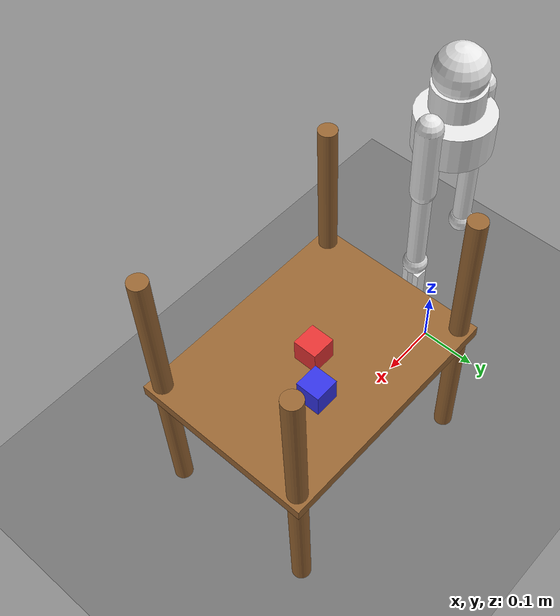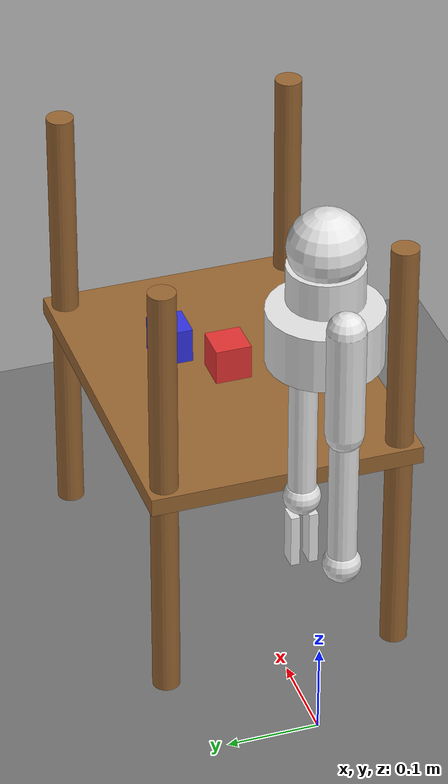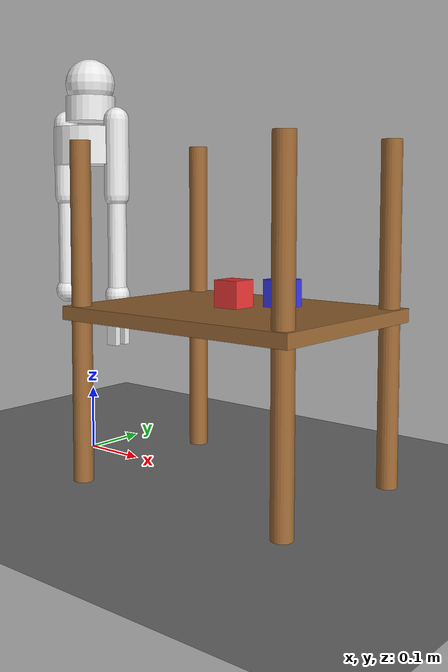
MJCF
<mujoco model="reachy_mini_manipulation">
  <compiler angle="radian" autolimits="true"/>
  <option timestep="0.002" gravity="0 0 -9.81"/>

  <visual>
    <global offwidth="960" offheight="540"/>
  </visual>

  <default>
    <joint armature="0.01" damping="0.5"/>
    <geom condim="4" friction="1.0 0.005 0.0001"/>
    <position kp="200" kv="10"/>
  </default>

  <asset>
    <texture name="grid" type="2d" builtin="checker" rgb1="0.4 0.4 0.4" rgb2="0.5 0.5 0.5" width="512" height="512"/>
    <material name="grid_mat" texture="grid" texrepeat="5 5" reflectance="0.1"/>
    <material name="robot_mat" rgba="0.9 0.9 0.9 1"/>
    <material name="red_obj" rgba="0.9 0.2 0.2 1"/>
    <material name="blue_obj" rgba="0.2 0.2 0.9 1"/>
    <material name="table_mat" rgba="0.6 0.4 0.2 1"/>
  </asset>

  <worldbody>
    <geom name="ground" type="plane" size="5 5 0.1" material="grid_mat"/>
    <light name="top" pos="0 0 3" dir="0 0 -1"/>
    <light name="side" pos="2 2 2" dir="-1 -1 -1"/>

    <!-- Reachy Mini base (table-mounted arm) -->
    <body name="base" pos="0 0 0.5">
      <inertial mass="2.0" pos="0 0 0" diaginertia="0.05 0.05 0.05"/>
      <geom name="base_geom" type="cylinder" size="0.06 0.03" material="robot_mat"/>

      <!-- Head (pan/tilt) -->
      <body name="head_base" pos="0 0 0.06">
        <inertial mass="0.5" pos="0 0 0.03" diaginertia="0.005 0.005 0.005"/>
        <joint name="head_pan" type="hinge" axis="0 0 1" range="-1.5 1.5"/>
        <geom name="head_base_geom" type="cylinder" size="0.04 0.02" material="robot_mat"/>

        <body name="head_tilt" pos="0 0 0.04">
          <inertial mass="0.3" pos="0 0.02 0" diaginertia="0.002 0.002 0.002"/>
          <joint name="head_tilt" type="hinge" axis="1 0 0" range="-0.5 0.5"/>
          <geom name="head_geom" type="sphere" size="0.04" material="robot_mat"/>
        </body>
      </body>

      <!-- Right arm (main arm for manipulation) -->
      <body name="r_shoulder" pos="0.06 0 0.04">
        <inertial mass="0.3" pos="0 0 -0.06" diaginertia="0.003 0.003 0.003"/>
        <joint name="r_shoulder_pitch" type="hinge" axis="1 0 0" range="-2 2"/>
        <geom name="r_upper_arm" type="capsule" size="0.02" fromto="0 0 0 0 0 -0.12" material="robot_mat"/>

        <body name="r_elbow" pos="0 0 -0.12">
          <inertial mass="0.2" pos="0 0 -0.08" diaginertia="0.002 0.002 0.002"/>
          <joint name="r_elbow" type="hinge" axis="1 0 0" range="-2.5 0"/>
          <geom name="r_forearm" type="capsule" size="0.015" fromto="0 0 0 0 0 -0.16" material="robot_mat"/>

          <body name="r_wrist" pos="0 0 -0.16">
            <inertial mass="0.1" pos="0 0 0" diaginertia="0.001 0.001 0.001"/>
            <joint name="r_wrist" type="hinge" axis="0 1 0" range="-1 1"/>
            <geom name="r_wrist_geom" type="sphere" size="0.02" material="robot_mat"/>

            <!-- Gripper -->
            <body name="r_gripper_base" pos="0 0 -0.02">
              <inertial mass="0.05" pos="0 0 0" diaginertia="0.0005 0.0005 0.0005"/>
              <joint name="gripper" type="hinge" axis="0 1 0" range="-0.5 0.5"/>
              <geom name="r_gripper_l" type="box" size="0.01 0.005 0.03" pos="0 0.01 -0.03" material="robot_mat"/>
              <geom name="r_gripper_r" type="box" size="0.01 0.005 0.03" pos="0 -0.01 -0.03" material="robot_mat"/>
            </body>
          </body>
        </body>
      </body>

      <!-- Left arm (secondary) -->
      <body name="l_shoulder" pos="-0.06 0 0.04">
        <inertial mass="0.3" pos="0 0 -0.06" diaginertia="0.003 0.003 0.003"/>
        <joint name="l_shoulder_pitch" type="hinge" axis="1 0 0" range="-2 2"/>
        <geom name="l_upper_arm" type="capsule" size="0.02" fromto="0 0 0 0 0 -0.12" material="robot_mat"/>

        <body name="l_elbow" pos="0 0 -0.12">
          <inertial mass="0.2" pos="0 0 -0.08" diaginertia="0.002 0.002 0.002"/>
          <joint name="l_elbow" type="hinge" axis="1 0 0" range="-2.5 0"/>
          <geom name="l_forearm" type="capsule" size="0.015" fromto="0 0 0 0 0 -0.16" material="robot_mat"/>

          <body name="l_wrist" pos="0 0 -0.16">
            <inertial mass="0.1" pos="0 0 0" diaginertia="0.001 0.001 0.001"/>
            <joint name="l_wrist" type="hinge" axis="0 1 0" range="-1 1"/>
            <geom name="l_hand" type="sphere" size="0.02" material="robot_mat"/>
          </body>
        </body>
      </body>
    </body>

    <!-- Table -->
    <body name="table" pos="0.3 0 0.25">
      <geom name="table_top" type="box" size="0.2 0.15 0.01" material="table_mat"/>
      <geom name="table_leg1" type="cylinder" size="0.015 0.25" pos="0.18 0.13 0" material="table_mat"/>
      <geom name="table_leg2" type="cylinder" size="0.015 0.25" pos="-0.18 0.13 0" material="table_mat"/>
      <geom name="table_leg3" type="cylinder" size="0.015 0.25" pos="0.18 -0.13 0" material="table_mat"/>
      <geom name="table_leg4" type="cylinder" size="0.015 0.25" pos="-0.18 -0.13 0" material="table_mat"/>
    </body>

    <!-- Manipulation objects -->
    <body name="red_cube" pos="0.3 0 0.28">
      <freejoint name="red_cube_joint"/>
      <inertial mass="0.05" pos="0 0 0" diaginertia="0.0001 0.0001 0.0001"/>
      <geom name="red_cube_geom" type="box" size="0.02 0.02 0.02" material="red_obj"/>
    </body>

    <body name="blue_cube" pos="0.35 0.05 0.28">
      <freejoint name="blue_cube_joint"/>
      <inertial mass="0.05" pos="0 0 0" diaginertia="0.0001 0.0001 0.0001"/>
      <geom name="blue_cube_geom" type="box" size="0.02 0.02 0.02" material="blue_obj"/>
    </body>
  </worldbody>

  <!-- Actuators -->
  <actuator>
    <position name="head_pan_ctrl" joint="head_pan" kp="100"/>
    <position name="head_tilt_ctrl" joint="head_tilt" kp="100"/>
    <position name="r_shoulder_ctrl" joint="r_shoulder_pitch" kp="200"/>
    <position name="r_elbow_ctrl" joint="r_elbow" kp="150"/>
    <position name="r_wrist_ctrl" joint="r_wrist" kp="100"/>
    <position name="gripper_ctrl" joint="gripper" kp="50"/>
    <position name="l_shoulder_ctrl" joint="l_shoulder_pitch" kp="200"/>
    <position name="l_elbow_ctrl" joint="l_elbow" kp="150"/>
  </actuator>

</mujoco>
